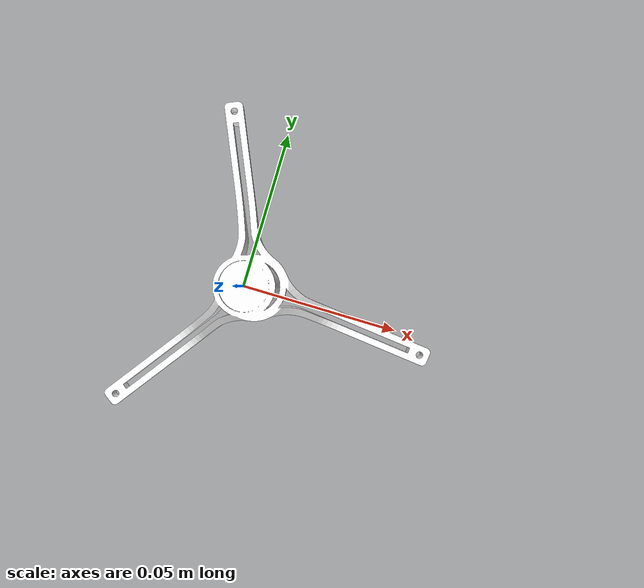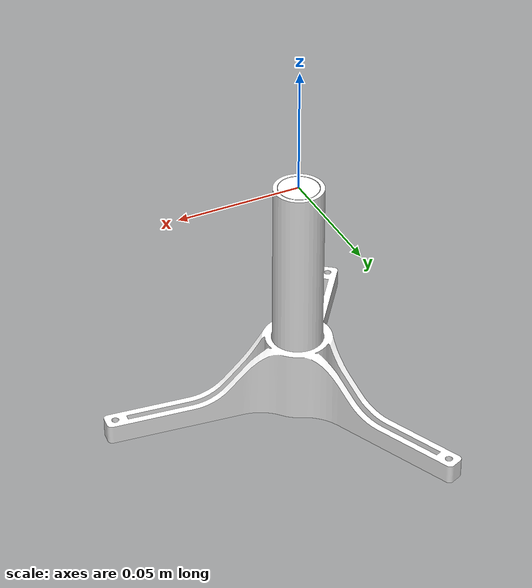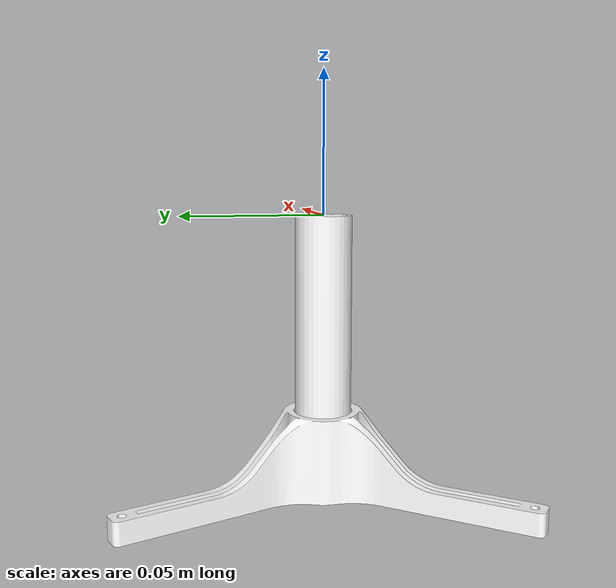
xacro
<?xml version="1.0"?>

<robot xmlns:xacro="http://www.ros.org/wiki/xacro" name="vscmg">
    <xacro:property name="M_PI" value="3.141592653589793" />
    <xacro:property name="M_PI_2" value="${M_PI/2}" />
    <xacro:property name="DEG_TO_RAD" value="${M_PI/180.0}" />
    <xacro:property name="M_BETA" value="${M_PI/2-atan(sqrt(2))}" />

    <material name="blue">
        <color rgba="0 0 0.8 1" />
    </material>

    <material name="platform_color">
        <color rgba="${96/255} ${96/255} ${96/255} 1.0" />
    </material>

    <material name="tripod_color">
        <color rgba="1.0 1.0 1.0 1.0" />
    </material>
    <material name="cmg_frame_color">
        <color rgba="1.0 1.0 1.0 1.0" />
    </material>

    <material name="gimbal_color">
        <color rgba="0.3 0.8 0.05 1.0" />
    </material>

    <material name="rw_color">
        <color rgba="0.23 0.23 0.23 1.0" />
    </material>

    <link name="world" />

    <link name="tripod">
        <inertial>
            <origin xyz="0.0 0.0 0.0" rpy="0.0 0.0 0.0" />
            <mass value="0.0" />
            <inertia ixx="0.0" ixy="0.0" ixz="0.0" iyy="0.0" iyz="0.0" izz="0.0" />
        </inertial>
        <visual name="">
            <origin xyz="0.0 0.0 0.05" rpy="0.0 0.0 0.0" />
            <geometry>
                <mesh filename="package://vscmg_description/meshes/tripod.stl" scale="0.001 0.001 0.001" />
            </geometry>
            <material name="tripod_color" />
        </visual>
        <collision>
            <origin xyz="0.0 0.0 0.05" rpy="0.0 0.0 0.0" />
            <geometry>
                <mesh filename="package://vscmg_description/meshes/tripod.stl" scale="0.001 0.001 0.001" />
            </geometry>
        </collision>
    </link>

    <joint name="tripod_world" type="fixed">
        <origin xyz="0.0 0.0 0.0" rpy="0.0 0.0 0.0"/>
        <parent link="world"/>
        <child link="tripod"/>
        <axis xyz="0.0 0.0 0.0"/>
        <limit lower="0.0" upper="0.0" effort="0.0" velocity="0.0"/>
    </joint>

</robot>
